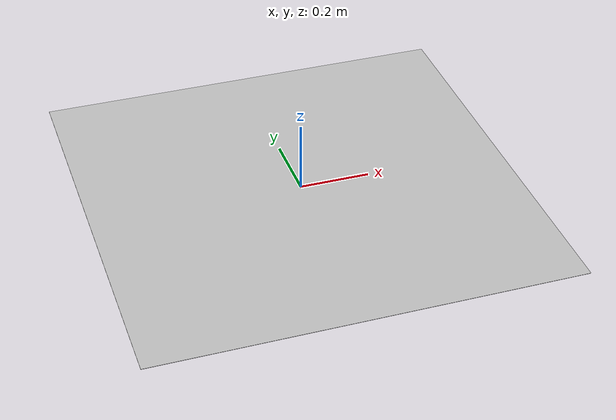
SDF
<?xml version="1.0"?>
<sdf version="1.6">
  <model name="home_marker_H2">
    <static>true</static>
    <link name="link">
      <pose>0 0 0 0 0 0</pose>

      <!-- Collision geometry -->
      <collision name="collision">
        <geometry>
          <plane>
            <normal>0 0 1</normal>
            <size>1.2 1.2</size>
          </plane>
        </geometry>
      </collision>

      <!-- Visual appearance -->
      <visual name="visual">
        <geometry>
          <plane>
            <normal>0 0 1</normal>
            <size>1.2 1.2</size>
          </plane>
        </geometry>
        <material>
          <script>
            <uri>model://home_marker_H2/materials/scripts</uri>
            <uri>model://home_marker_H2/materials/textures</uri>
            <name>home_marker_H2/material</name>
          </script>
        </material>
      </visual>

      <!-- Contact sensor publishing ROS2 ContactsState -->
      <sensor name="contact_sensor_H2" type="contact">
        <always_on>true</always_on>
        <update_rate>100</update_rate>
        <contact>
          <!-- Reference the collision by its name -->
          <collision>collision</collision>
        </contact>

        <!-- ROS bumper plugin inside the sensor -->
        <plugin name="gazebo_ros_bumper_home_H2" filename="libgazebo_ros_bumper.so">
          <ros>
            <namespace>/islab</namespace>
            <remapping>bumper_states:=home/H2/contacts</remapping>
          </ros>
        </plugin>
      </sensor>

    </link>
  </model>
</sdf>
